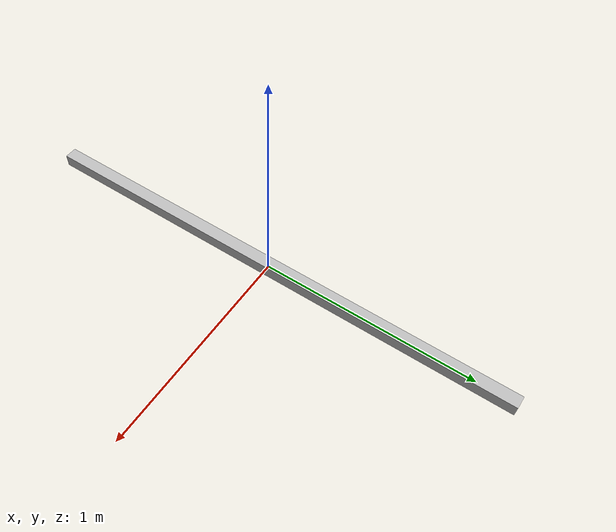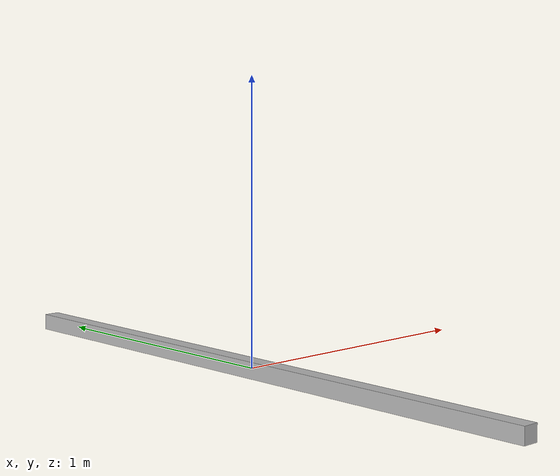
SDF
<?xml version="1.0"?>
<sdf version="1.6">
  <model name="timber_log">
    <pose>0 0 0 0 0 0</pose>
    <static>false</static>
    <inertial>
        <mass value="100.0"/>
        <origin xyz="0 0 0" />
        <inertia ixx="1.0" ixy="-1.0" ixz="-1.0" iyy="10.0" iyz="-1.0" izz="100.0" />
    </inertial>
    <link name="link">
      <collision name="collision">
        <geometry>
          <mesh>
            <uri>model://timber_log/meshes/timber_log.dae</uri>
          </mesh>
        </geometry>
      </collision>
      <visual name="visual">
        <geometry>
          <mesh>
            <uri>model://timber_log/meshes/timber_log.dae</uri>
          </mesh>
        </geometry>
      </visual>
    </link>
  </model>
</sdf>
